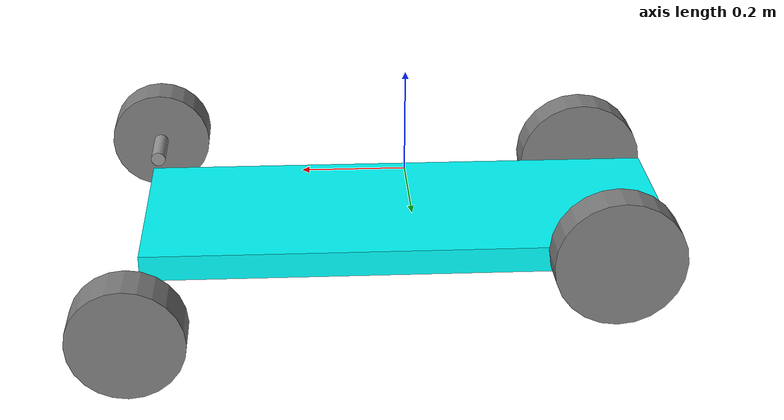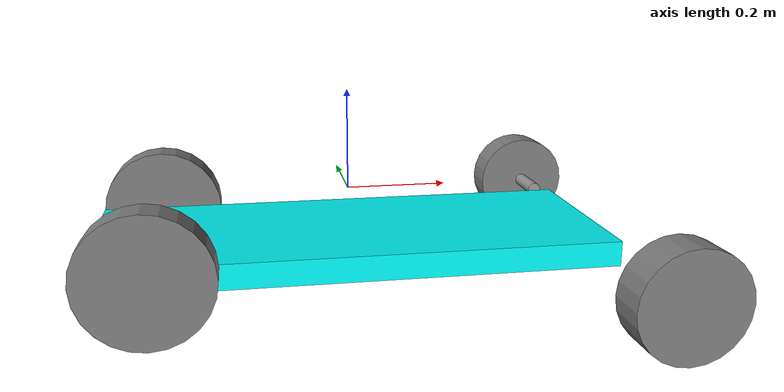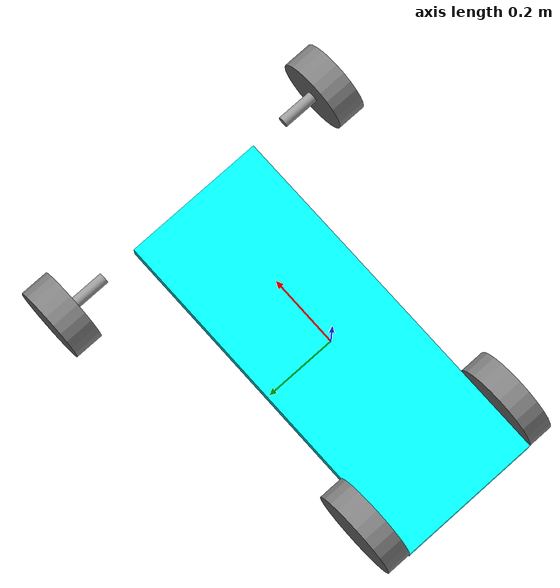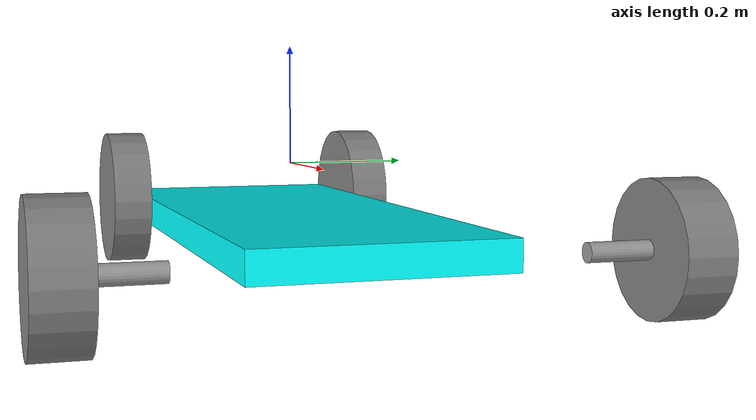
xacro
<?xml version="1.0"?>
<robot xmlns:xacro="http://ros.org/wiki/xacro">

 <!-- Heavily based on https://navigation.ros.org/setup_guides/urdf/setup_urdf.html -->

   <!-- Define robot constants -->
  <xacro:property name="chassi_width" value="0.4"/>
  <xacro:property name="chassi_length" value="1.02"/>
  <xacro:property name="chassi_height" value="0.05"/>

  <!-- backwheel params -->
  <xacro:property name="backwheel_radius" value="0.125"/>
  <xacro:property name="backwheel_width" value="0.069"/>
  <xacro:property name="backwheel_ygap" value="0.0"/>
  <xacro:property name="backwheel_zoff" value="-0.02"/>
  <xacro:property name="backwheel_xoff" value="${-(chassi_length)/2 + (backwheel_radius)}"/>

  <!-- frontwheel params -->
  <xacro:property name="frontwheel_radius" value="0.105"/>
  <xacro:property name="frontwheel_width" value="0.080"/>

  <!-- Frontwheel steering geometry params -->
  <xacro:property name="steering_arm_length" value="0.1"/>
  <xacro:property name="steering_arm_radius" value="0.015"/>
    <!-- swiwel joint sideways offset from center of gokart-->
  <xacro:property name="steering_yoffset" value="${chassi_width/2+0.1}"/>
    <!-- swiwel joint lengthwise offset from center of gokart -->
  <xacro:property name="steering_xoffset" value="${chassi_length/2}"/>
    <!-- swiwel joint z offset -->
  <xacro:property name="steering_zoffset" value="0"/>

  <xacro:property name="steering_body_extension_zoff" value="0"/>
  <xacro:property name="steering_swiwel_length" value="0.05"/>
  <xacro:property name="steering_swiwel_radius" value="0.025"/>
  <xacro:property name="steering_swiwel_extension_length" value="0.03"/>
  <xacro:property name="steering_swiwel_extension_radius" value="0.015"/>

  <xacro:property name="steering_turn_max_limit" value="${pi/5}"/>
  <xacro:property name="steering_turn_min_limit" value="${-pi/5}"/>

  <!-- Gokart front wing parameters - As of now simplified to a slab -->
  <xacro:property name="gokart_frontwing_width" value="0.8"/>
  <xacro:property name="gokart_frontwing_length" value="0.125"/>
  <xacro:property name="gokart_frontwing_height" value="0.025"/>
  <xacro:property name="gokart_frontwing_body_xoff" value="0.16"/>

  <!-- Inertial parameters for chassi dynamics, very simplified -->
  <!-- TODO make the dynamics more accurate and real life accurate, see this as placeholders-->
  <xacro:property name="backwheel_weight" value="4.0"/>
  <xacro:property name="frontwheel_weight" value="1.5"/>
  <xacro:property name="chassi_body_weight" value="50.0"/>
  <xacro:property name="frontwing_weight" value="50.0"/>
  <xacro:property name="front_steering_link_weight" value="0.25"/>

  <!-- Inertial macros -->
   <xacro:include filename="$(find autonomous_platform_robot_description_pkg)/src/description/inertia_macros.xacro"/>

  <!-- Robot Base -->
  <link name="chassi_link">
    <visual>
      <geometry>
        <box size="${chassi_length} ${chassi_width} ${chassi_height}"/>
      </geometry>
      <material name="Cyan">
        <color rgba="0 1.0 1.0 1.0"/>
      </material>
    </visual>

    <collision>
      <geometry>
        <box size="${chassi_length} ${chassi_width} ${chassi_height}"/>
      </geometry>
    </collision>

    <xacro:inertial_box mass="${chassi_body_weight}" x="${chassi_length}" y="${chassi_width}" z="${chassi_height}">
      <origin xyz="0.0 0.0 0.0" rpy="0.0 0.0 0.0"/>
    </xacro:inertial_box>

    <gazebo reference="chassi_link">
      <material name="Cyan">
        <color rgba="0 1.0 1.0 1.0"/>
      </material>
    </gazebo>
  </link>

    <!-- Robot Footprint -->
  <link name="base_link"/>

  <joint name="base_joint" type="fixed">
    <parent link="base_link"/>
    <child link="chassi_link"/>
    <origin xyz="0.0 0.0 ${-(backwheel_radius+backwheel_zoff)}" rpy="0 0 0"/>
  </joint>

    <!-- macro backwheels -->
  <xacro:macro name="back_wheel" params="prefix x_reflect y_reflect">
    <link name="${prefix}_link">
      <visual>
        <origin xyz="0 0 0" rpy="${pi/2} 0 0"/>
        <geometry>
            <cylinder radius="${backwheel_radius}" length="${backwheel_width}"/>
        </geometry>
        <material name="Gray">
          <color rgba="0.5 0.5 0.5 1.0"/>
        </material>
      </visual>

      <collision>
      <origin xyz="0 0 0" rpy="${pi/2} 0 0"/>
        <geometry>
            <cylinder radius="${backwheel_radius}" length="${backwheel_width}"/>
        </geometry>
      </collision>

      <xacro:inertial_cylinder mass="${backwheel_weight}" length="${backwheel_width}" radius="${backwheel_radius}" >
        <origin xyz="0 0 0" rpy="${pi/2} 0 0"/>
      </xacro:inertial_cylinder>
    </link>

    <joint name="${prefix}_joint" type="continuous">
      <parent link="chassi_link"/>
      <child link="${prefix}_link"/>
      <origin xyz="${x_reflect*backwheel_xoff} ${y_reflect*(chassi_width/2)+y_reflect*backwheel_ygap + y_reflect*backwheel_width/2} ${-backwheel_zoff}" rpy="0 0 0"/>
      <axis xyz="0 1 0"/>
    </joint>

    <gazebo reference="${prefix}_link">
      <material> Gazebo/DarkGrey </material>
    </gazebo>

  </xacro:macro>

  <!-- Create back wheels -->
  <xacro:back_wheel prefix="back_wheel_left" x_reflect="1" y_reflect="1" />
  <xacro:back_wheel prefix="back_wheel_right" x_reflect="1" y_reflect="-1" />

  <!-- Front wheel with ackermann steering setup macro -->
  <!-- macro front steering geometry and front wheels i.e define everything once and mirror left and right geometry-->
  <xacro:macro name="front_steering" params="prefix x_reflect y_reflect">

     <link name="${prefix}_steering_arm_link">
      <visual>
        <origin xyz="0 ${(steering_arm_length/2)*y_reflect} 0" rpy="${pi/2} 0 0"/>
        <geometry>
            <cylinder radius="${steering_arm_radius}" length="${steering_arm_length}"/>
        </geometry>
        <material name="arm_link">
          <color rgba="0.6 0.6 0.6 1.0"/>
        </material>
      </visual>

      <collision>
         <origin xyz="0 ${-(steering_arm_length/2)*y_reflect} 0" rpy="${pi/2} 0 0"/>
        <geometry>
            <cylinder radius="${steering_arm_radius}" length="${steering_arm_length}"/>
        </geometry>
      </collision>

      <xacro:inertial_cylinder mass="${front_steering_link_weight}" length="${steering_arm_length}" radius="${steering_arm_radius}" >
         <origin xyz="0 ${-(steering_arm_length/2)*y_reflect} 0" rpy="${pi/2} 0 0"/>
      </xacro:inertial_cylinder>

      <gazebo reference="${prefix}_steering_arm_link">
        <material> Gazebo/Yellow </material>
      </gazebo>
    </link>

    <!-- link describing the front wheel -->
    <link name="${prefix}_front_wheel_link">
      <visual>
        <origin xyz="0 0 0" rpy="${pi/2} 0 0"/>
        <geometry>
            <cylinder radius="${frontwheel_radius}" length="${frontwheel_width}"/>
        </geometry>
        <material name="Gray">
          <color rgba="0.5 0.5 0.5 1.0"/>
        </material>
      </visual>

      <collision>
        <origin xyz="0 0 0" rpy="${pi/2} 0 0"/>
        <geometry>
            <cylinder radius="${frontwheel_radius}" length="${frontwheel_width}"/>
        </geometry>
      </collision>

      <xacro:inertial_cylinder mass="${frontwheel_weight}" length="${frontwheel_width}" radius="${frontwheel_radius}" >
        <origin xyz="0 ${steering_arm_length} 0" rpy="${pi/2} 0 0"/>
      </xacro:inertial_cylinder>

      <gazebo reference="${prefix}_front_wheel_link">
        <material> Gazebo/Grey </material>
      </gazebo>
    </link>

   <!-- joints -->
   <!-- steering extension link is mounted on gokart chassis -->
  <joint name="steering_swiwel_${prefix}_joint" type="revolute">
      <parent link="chassi_link"/>
      <child link="${prefix}_steering_arm_link"/>
      <axis xyz="0 0 1" />
      <limit effort="100" lower="${steering_turn_min_limit }" upper="${steering_turn_max_limit}" velocity="1" />
      <origin xyz="${steering_xoffset} ${steering_yoffset*y_reflect} ${steering_zoffset}" rpy="0 0 0"/>
    </joint>

   <!-- wheel rotatingjoint, wheel is mounted on body extension -->
   <joint name="${prefix}_front_wheel_joint" type="continuous">
      <parent link="${prefix}_steering_arm_link" />
      <child link="${prefix}_front_wheel_link"/>
      <origin xyz="0 ${steering_arm_length*y_reflect+(frontwheel_width/2)*y_reflect} 0" rpy="0 0 0"/>
      <axis xyz="0 1 0"/>
    </joint>

  </xacro:macro>

  <!-- Create front wheels with ackermann steering -->
  <xacro:front_steering prefix="left" x_reflect="1" y_reflect="1" />
  <xacro:front_steering prefix="right" x_reflect="1" y_reflect="-1" />

</robot>

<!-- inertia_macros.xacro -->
<robot xmlns:xacro="http://ros.org/wiki/xacro">

 <!-- Taken from https://github.com/joshnewans/articubot_one/blob/d5aa5e9bc9039073c0d8fd7fe426e170be79c087/description/inertial_macros.xacro -->

<!-- Specify some standard inertial calculations https://en.wikipedia.org/wiki/List_of_moments_of_inertia -->
    <!-- These make use of xacro's mathematical functionality -->

    <xacro:macro name="inertial_sphere" params="mass radius *origin">
        <inertial>
            <xacro:insert_block name="origin"/>
            <mass value="${mass}" />
            <inertia ixx="${(2/5) * mass * (radius*radius)}" ixy="0.0" ixz="0.0"
                    iyy="${(2/5) * mass * (radius*radius)}" iyz="0.0"
                    izz="${(2/5) * mass * (radius*radius)}" />
        </inertial>
    </xacro:macro>

    <xacro:macro name="inertial_box" params="mass x y z *origin">
        <inertial>
            <xacro:insert_block name="origin"/>
            <mass value="${mass}" />
            <inertia ixx="${(1/12) * mass * (y*y+z*z)}" ixy="0.0" ixz="0.0"
                    iyy="${(1/12) * mass * (x*x+z*z)}" iyz="0.0"
                    izz="${(1/12) * mass * (x*x+y*y)}" />
        </inertial>
    </xacro:macro>

    <xacro:macro name="inertial_cylinder" params="mass length radius *origin">
        <inertial>
            <xacro:insert_block name="origin"/>
            <mass value="${mass}" />
            <inertia ixx="${(1/12) * mass * (3*radius*radius + length*length)}" ixy="0.0" ixz="0.0"
                    iyy="${(1/12) * mass * (3*radius*radius + length*length)}" iyz="0.0"
                    izz="${(1/2) * mass * (radius*radius)}" />
        </inertial>
    </xacro:macro>

</robot>
